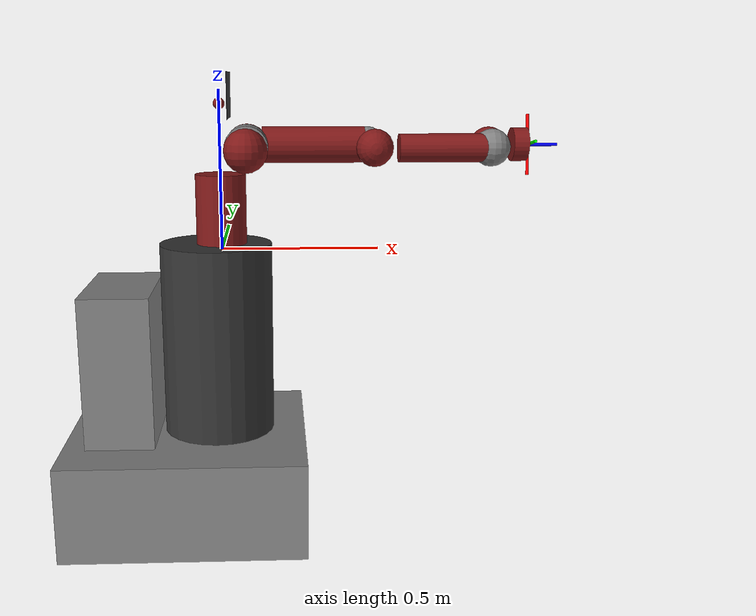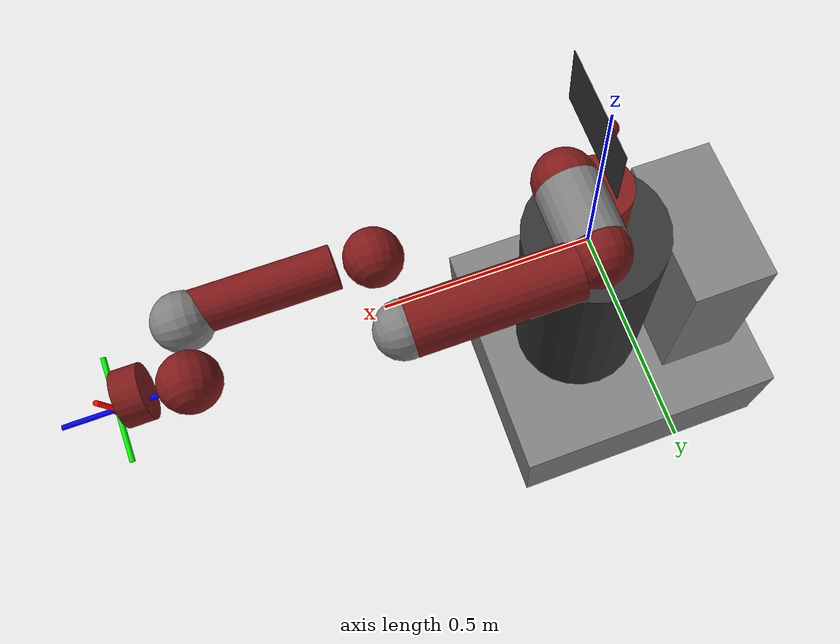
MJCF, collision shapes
<mujoco model="sawyer">
    <actuator>
        <!-- Mujoco does not have velocity limit in actuator :( -->
        <velocity ctrllimited="true" ctrlrange="-1.74 1.74" joint="right_j0" kv="8.0" name="vel_right_j0"/>
        <velocity ctrllimited="true" ctrlrange="-1.328 1.328" joint="right_j1" kv="7.0" name="vel_right_j1"/>
        <velocity ctrllimited="true" ctrlrange="-1.957 1.957" joint="right_j2" kv="6.0" name="vel_right_j2"/>
        <velocity ctrllimited="true" ctrlrange="-1.957 1.957" joint="right_j3" kv="4.0" name="vel_right_j3"/>
        <velocity ctrllimited="true" ctrlrange="-3.485 3.485" joint="right_j4" kv="2.0" name="vel_right_j4"/>
        <velocity ctrllimited="true" ctrlrange="-3.485 3.485" joint="right_j5" kv="0.5" name="vel_right_j5"/>
        <velocity ctrllimited="true" ctrlrange="-4.545 4.545" joint="right_j6" kv="0.1" name="vel_right_j6"/>
    </actuator>
    <asset>
        <mesh file="meshes/pedestal.stl" name="pedestal"/>
        <mesh file="meshes/base.stl" name="base"/>
        <mesh file="meshes/l0.stl" name="l0"/>
        <mesh file="meshes/head.stl" name="head"/>
        <mesh file="meshes/l1.stl" name="l1"/>
        <mesh file="meshes/l2.stl" name="l2"/>
        <mesh file="meshes/l3.stl" name="l3"/>
        <mesh file="meshes/l4.stl" name="l4"/>
        <mesh file="meshes/l5.stl" name="l5"/>
        <mesh file="meshes/l6.stl" name="l6"/>
    </asset>
    <worldbody>
        <body name="base" pos="0 0 0">
            <inertial diaginertia="0 0 0" mass="0" pos="0 0 0"/>
            <body name="controller_box" pos="0 0 0">
                <inertial diaginertia="1.71363 1.27988 0.809981" mass="46.64" pos="-0.325 0 -0.38"/>
                <geom name="controller_box_visual" conaffinity="0" contype="0" pos="-0.325 0 -0.38"
                      size="0.11 0.2 0.265" type="box"/>
            </body>
            <body name="pedestal_feet" pos="0 0 0">
                <inertial diaginertia="8.16095 9.59375 15.0785" mass="167.09" pos="-0.1225 0 -0.758"/>
                <geom name="pedestal_feet_visual" conaffinity="0" contype="0" pos="-0.1225 0 -0.758"
                      size="0.385 0.35 0.155" type="box"/>
            </body>
            <body name="torso" pos="0 0 0">
                <inertial diaginertia="1e-08 1e-08 1e-08" mass="0.0001" pos="0 0 0"/>
                <geom name="torso_visual" conaffinity="0" contype="0" group="1" rgba="0.2 0.2 0.2 1"
                      size="0.05 0.05 0.05" type="box"/>
            </body>
            <body name="pedestal" pos="0 0 0">
                <inertial diaginertia="6.0869 5.81635 4.20915" mass="60.864" pos="0 0 0"
                          quat="0.659267 -0.259505 -0.260945 0.655692"/>
                <geom name="pedestal_visual" conaffinity="0" contype="0" group="1" mesh="pedestal"
                      pos="0.26 0.345 -0.91488" quat="0.5 0.5 -0.5 -0.5" rgba="0.2 0.2 0.2 1" type="mesh"/>
                <geom name="pedestal_collision" pos="-0.02 0 -0.29" rgba="0.2 0.2 0.2 1" size="0.18 0.31"
                      type="cylinder"/>
            </body>
            <body name="right_arm_base_link" pos="0 0 0">
                <inertial diaginertia="0.00740351 0.00681776 0.00672942" mass="2.0687"
                          pos="-0.0006241 -2.8025e-05 0.065404" quat="-0.209285 0.674441 0.227335 0.670558"/>
                <geom name="right_arm_base_link_visual" conaffinity="0" contype="0" group="1" mesh="base"
                      rgba="0.5 0.1 0.1 1" type="mesh"/>
                <geom name="right_arm_base_link_collision" pos="0 0 0.12" rgba="0.5 0.1 0.1 1" size="0.08 0.12"
                      type="cylinder"/>
                <body name="right_l0" pos="0 0 0.08">
                    <inertial diaginertia="0.0651588 0.0510944 0.0186218" mass="5.3213" pos="0.024366 0.010969 0.14363"
                              quat="0.894823 0.00899958 -0.170275 0.412573"/>
                    <joint axis="0 0 1" limited="true" name="right_j0" pos="0 0 0" range="-3.0503 3.0503"/>
                    <geom name="right_l0_visual" conaffinity="0" contype="0" group="1" mesh="l0" rgba="0.5 0.1 0.1 1"
                          type="mesh"/>
                    <geom name="right_l0_collision" pos="0.08 0 0.23" rgba="0.5 0.1 0.1 1" size="0.07"/>
                    <body name="head" pos="0 0 0.2965">
                        <inertial diaginertia="0.0118334 0.00827089 0.00496574" mass="1.5795"
                                  pos="0.0053207 -2.6549e-05 0.1021"
                                  quat="0.999993 7.08405e-05 -0.00359857 -0.000626247"/>
                        <geom name="head_visual" conaffinity="0" contype="0" group="1" mesh="head" rgba="0.5 0.1 0.1 1"
                              type="mesh"/>
                        <geom name="head_collision" pos="0 0 0.08" rgba="0.5 0.1 0.1 1" size="0.018"/>
                        <body name="screen" pos="0.03 0 0.105" quat="0.5 0.5 0.5 0.5">
                            <inertial diaginertia="1e-08 1e-08 1e-08" mass="0.0001" pos="0 0 0"/>
                            <geom name="screen_visual" conaffinity="0" contype="0" group="1" rgba="0.2 0.2 0.2 1"
                                  size="0.12 0.07 0.001" type="box"/>
                            <geom name="screen_collision" rgba="0.2 0.2 0.2 1" size="0.001"/>
                        </body>
                        <body name="head_camera" pos="0.0228027 0 0.216572"
                              quat="0.342813 -0.618449 0.618449 -0.342813">
                            <inertial diaginertia="0 0 0" mass="0" pos="0.0228027 0 0.216572"
                                      quat="0.342813 -0.618449 0.618449 -0.342813"/>
                        </body>
                    </body>
                    <body name="right_torso_itb" pos="-0.055 0 0.22" quat="0.707107 0 -0.707107 0">
                        <inertial diaginertia="1e-08 1e-08 1e-08" mass="0.0001" pos="0 0 0"/>
                    </body>
                    <body name="right_l1" pos="0.081 0.05 0.237" quat="0.5 -0.5 0.5 0.5">
                        <inertial diaginertia="0.0224339 0.0221624 0.0097097" mass="4.505"
                                  pos="-0.0030849 -0.026811 0.092521" quat="0.424888 0.891987 0.132364 -0.0794296"/>
                        <joint axis="0 0 1" limited="true" name="right_j1" pos="0 0 0" range="-3.8095 2.2736"/>
                        <geom name="right_l1_visual" conaffinity="0" contype="0" group="1" mesh="l1"
                              rgba="0.5 0.1 0.1 1" type="mesh"/>
                        <geom name="right_l1_collision" pos="0 0 0.1225" rgba="0.5 0.1 0.1 1" size="0.07"/>
                        <body name="right_l2" pos="0 -0.14 0.1425" quat="0.707107 0.707107 0 0">
                            <inertial diaginertia="0.0257928 0.025506 0.00292515" mass="1.745"
                                      pos="-0.00016044 -0.014967 0.13582"
                                      quat="0.707831 -0.0524761 0.0516007 0.702537"/>
                            <joint axis="0 0 1" limited="true" name="right_j2" pos="0 0 0" range="-3.0426 3.0426"/>
                            <geom name="right_l2_visual" conaffinity="0" contype="0" group="1" mesh="l2"
                                  rgba="0.5 0.1 0.1 1" type="mesh"/>
                            <geom name="right_l2_collision" pos="0 0 0.08" rgba="0.5 0.1 0.1 1" size="0.06 0.17"
                                  type="cylinder"/>
                            <body name="right_l3" pos="0 -0.042 0.26" quat="0.707107 -0.707107 0 0">
                                <inertial diaginertia="0.0102404 0.0096997 0.00369622" mass="2.5097"
                                          pos="-0.0048135 -0.0281 -0.084154"
                                          quat="0.902999 0.385391 -0.0880901 0.168247"/>
                                <joint axis="0 0 1" limited="true" name="right_j3" pos="0 0 0" range="-3.0439 3.0439"/>
                                <geom name="right_l3_visual" conaffinity="0" contype="0" group="1" mesh="l3"
                                      rgba="0.5 0.1 0.1 1" type="mesh"/>
                                <geom name="right_l3_collision" pos="0 -0.01 -0.12" rgba="0.5 0.1 0.1 1" size="0.06"/>
                                <body name="right_l4" pos="0 -0.125 -0.1265" quat="0.707107 0.707107 0 0">
                                    <inertial diaginertia="0.0136549 0.0135493 0.00127353" mass="1.1136"
                                              pos="-0.0018844 0.0069001 0.1341"
                                              quat="0.803612 0.031257 -0.0298334 0.593582"/>
                                    <joint axis="0 0 1" limited="true" name="right_j4" pos="0 0 0"
                                           range="-2.9761 2.9761"/>
                                    <geom name="right_l4_visual" conaffinity="0" contype="0" group="1" mesh="l4"
                                          rgba="0.5 0.1 0.1 1" type="mesh"/>
                                    <geom name="right_l4_collision" pos="0 0 0.11" rgba="0.5 0.1 0.1 1"
                                          size="0.045 0.15" type="cylinder"/>
                                    <body name="right_arm_itb" pos="-0.055 0 0.075" quat="0.707107 0 -0.707107 0">
                                        <inertial diaginertia="1e-08 1e-08 1e-08" mass="0.0001" pos="0 0 0"/>
                                    </body>
                                    <body name="right_l5" pos="0 0.031 0.275" quat="0.707107 -0.707107 0 0">
                                        <inertial diaginertia="0.00474131 0.00422857 0.00190672" mass="1.5625"
                                                  pos="0.0061133 -0.023697 0.076416"
                                                  quat="0.404076 0.9135 0.0473125 0.00158335"/>
                                        <joint axis="0 0 1" limited="true" name="right_j5" pos="0 0 0"
                                               range="-2.9761 2.9761" damping="0.2"/>
                                        <geom name="right_l5_visual" conaffinity="0" contype="0" group="1" mesh="l5"
                                              rgba="0.5 0.1 0.1 1" type="mesh"/>
                                        <geom name="right_l5_collision" pos="0 0 0.1" rgba="0.5 0.1 0.1 1" size="0.06"/>
                                        <body name="right_hand_camera" pos="0.039552 -0.033 0.0695"
                                              quat="0.707107 0 0.707107 0">
                                            <inertial diaginertia="0 0 0" mass="0" pos="0.039552 -0.033 0.0695"
                                                      quat="0.707107 0 0.707107 0"/>
                                        </body>
                                        <body name="right_wrist" pos="0 0 0.10541" quat="0.707107 0.707107 0 0">
                                            <inertial diaginertia="0 0 0" mass="0" pos="0 0 0.10541"
                                                      quat="0.707107 0.707107 0 0"/>
                                        </body>
                                        <body name="right_l6" pos="0 -0.11 0.1053"
                                              quat="0.0616248 0.06163 -0.704416 0.704416">
                                            <camera name="wrist_cam" pos="0 0.1 0" euler="-2.7 0 0"/>
                                            <inertial diaginertia="0.000360258 0.000311068 0.000214974" mass="0.3292"
                                                      pos="-8.0726e-06 0.0085838 -0.0049566"
                                                      quat="0.479044 0.515636 -0.513069 0.491322"/>
                                            <joint axis="0 0 1" limited="true" name="right_j6" pos="0 0 0"
                                                   range="-4.7124 4.7124" damping="0.1"/>
                                            <geom name="right_l6_visual" conaffinity="0" contype="0" group="1" mesh="l6"
                                                  rgba="0.5 0.1 0.1 1" type="mesh"/>
                                            <geom name="right_l6_collision" pos="0 0.015 -0.01" rgba="0.5 0.1 0.1 1"
                                                  size="0.055 0.025" type="cylinder"/>
                                            <body name="right_hand" pos="0 0 0.0245" quat="0.707105 0 0 0.707108">
                                                <!-- This sites were added for visualization. -->
                                                <site name="ee" pos="0 0 0" size="0.01 0.01 0.01" rgba="0 0 1 1"
                                                      type="sphere" group="1"/>
                                                <site name="ee_x" pos="0 0 0" size="0.005 .1"
                                                      quat="0.707105 0.707108 0 0 " rgba="1 0 0 1" type="cylinder"
                                                      group="1"/>
                                                <site name="ee_z" pos="0 0 0" size="0.005 .1"
                                                      quat="0.707105 0 0 0.707108" rgba="0 0 1 1" type="cylinder"
                                                      group="1"/>
                                                <site name="ee_y" pos="0 0 0" size="0.005 .1"
                                                      quat="0.707105 0 0.707108 0 " rgba="0 1 0 1" type="cylinder"
                                                      group="1"/>
                                                <!-- To add gripper -->
                                            </body>
                                        </body>
                                    </body>
                                    <body name="right_l4_2" pos="0 0 0">
                                        <inertial diaginertia="1e-08 1e-08 1e-08" mass="1e-08" pos="1e-08 1e-08 1e-08"
                                                  quat="0.820473 0.339851 -0.17592 0.424708"/>
                                        <geom name="right_l4_2_collision" pos="0 0.01 0.26" size="0.06"/>
                                    </body>
                                </body>
                            </body>
                            <body name="right_l2_2" pos="0 0 0">
                                <inertial diaginertia="1e-08 1e-08 1e-08" mass="1e-08" pos="1e-08 1e-08 1e-08"
                                          quat="0.820473 0.339851 -0.17592 0.424708"/>
                                <geom name="right_l2_2_collision" pos="0 0 0.26" size="0.06"/>
                            </body>
                        </body>
                        <body name="right_l1_2" pos="0 0 0">
                            <inertial diaginertia="1e-08 1e-08 1e-08" mass="1e-08" pos="1e-08 1e-08 1e-08"
                                      quat="0.820473 0.339851 -0.17592 0.424708"/>
                            <geom name="right_l1_2_collision" pos="0 0 0.035" size="0.07 0.07" type="cylinder"/>
                        </body>
                    </body>
                </body>
            </body>
        </body>
    </worldbody>
</mujoco>
